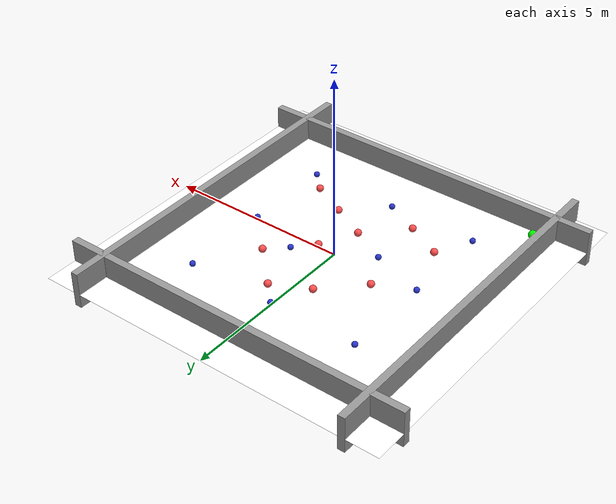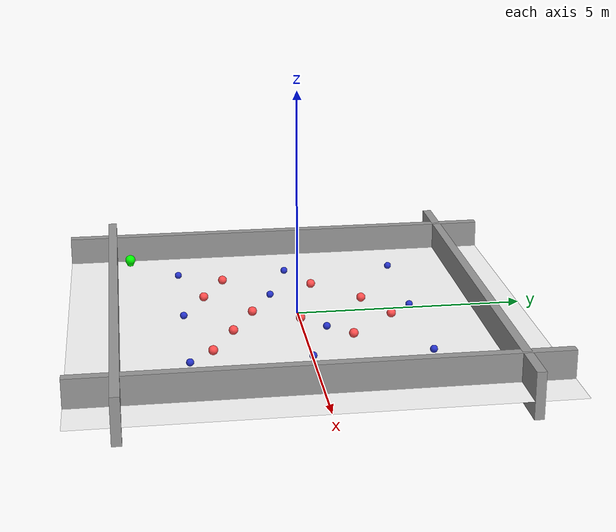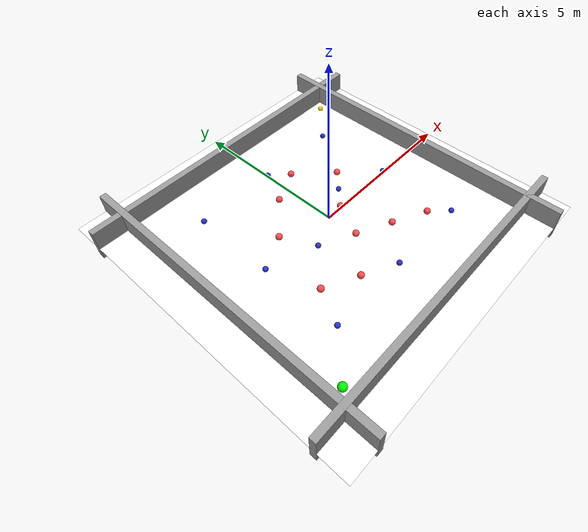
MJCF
<mujoco>
  <option gravity="0 0 -50" integrator="RK4" timestep="0.01"/>
  <visual><map znear="0.01"/></visual>

  <asset>
    <texture name="grid" type="2d" builtin="checker" width="512" height="512"
             rgb1="0.8 0.8 0.8" rgb2="1 1 1"/>
    <material name="grid_mat" texture="grid" texrepeat="10 10" reflectance="0.2"/>
  </asset>

  <default>
    <geom friction="1 0.01 0.001" solref="0.02 1" solimp="0.9 0.95 0.001"/>
    <site type="sphere" size="0.08"/>
    <default class="dynamic">
      <geom type="sphere" size="0.1" rgba="1 0.3 0.3 1"/>
    </default>
    <default class="static">
      <geom type="sphere" size="0.08" rgba="0.15 0.2 0.8 1"/>
    </default>
  </default>

  <worldbody>
    <camera name="top" pos="0 0 10" xyaxes="1 0 0 0 1 0"/>

    <!-- Floor + walls -->
    <geom name="floor" type="plane" size="5 5 0.1" material="grid_mat" rgba="1 1 1 1"/>
    <geom name="wall_left"  type="box" pos="-4 0 0.1" size="0.1 5 0.5" rgba="0.6 0.6 0.6 1"/>
    <geom name="wall_right" type="box" pos="4 0 0.1"  size="0.1 5 0.5" rgba="0.6 0.6 0.6 1"/>
    <geom name="wall_top"   type="box" pos="0 4 0.1"  size="5 0.1 0.5" rgba="0.6 0.6 0.6 1"/>
    <geom name="wall_bot"   type="box" pos="0 -4 0.1" size="5 0.1 0.5" rgba="0.6 0.6 0.6 1"/>

    <!-- Start/Goal markers -->
    <site name="start" pos="-3.6 -3.6 0.02" rgba="0 1 0 1"/>
    <site name="goal"  pos=" 3.6  3.6 0.02" rgba="1 0.85 0 1"/>

    <!-- 10 DYNAMIC obstacles (cat1-cat10) - RED with freejoint, positions randomized at runtime -->
    <body name="cat1"  pos="-2.0 -1.5 0.1"><freejoint/><geom class="dynamic"/></body>
    <body name="cat2"  pos="-1.0 -2.0 0.1"><freejoint/><geom class="dynamic"/></body>
    <body name="cat3"  pos="0.0 -1.0 0.1"><freejoint/><geom class="dynamic"/></body>
    <body name="cat4"  pos="1.0 -1.5 0.1"><freejoint/><geom class="dynamic"/></body>
    <body name="cat5"  pos="2.0 -2.0 0.1"><freejoint/><geom class="dynamic"/></body>
    <body name="cat6"  pos="-1.5 0.5 0.1"><freejoint/><geom class="dynamic"/></body>
    <body name="cat7"  pos="0.5 0.0 0.1"><freejoint/><geom class="dynamic"/></body>
    <body name="cat8"  pos="1.5 1.0 0.1"><freejoint/><geom class="dynamic"/></body>
    <body name="cat9"  pos="-0.5 1.5 0.1"><freejoint/><geom class="dynamic"/></body>
    <body name="cat10" pos="0.5 2.0 0.1"><freejoint/><geom class="dynamic"/></body>

    <!-- 10 STATIC obstacles (cat11-cat20) - BLUE with freejoint for runtime randomization -->
    <body name="cat11" pos="-2.5 -2.5 0.08"><freejoint/><geom class="static"/></body>
    <body name="cat12" pos="2.5 -2.5 0.08"><freejoint/><geom class="static"/></body>
    <body name="cat13" pos="-2.5 2.5 0.08"><freejoint/><geom class="static"/></body>
    <body name="cat14" pos="2.5 2.5 0.08"><freejoint/><geom class="static"/></body>
    <body name="cat15" pos="0.0 -2.5 0.08"><freejoint/><geom class="static"/></body>
    <body name="cat16" pos="0.0 2.5 0.08"><freejoint/><geom class="static"/></body>
    <body name="cat17" pos="-2.5 0.0 0.08"><freejoint/><geom class="static"/></body>
    <body name="cat18" pos="2.5 0.0 0.08"><freejoint/><geom class="static"/></body>
    <body name="cat19" pos="-1.0 -0.5 0.08"><freejoint/><geom class="static"/></body>
    <body name="cat20" pos="1.0 0.5 0.08"><freejoint/><geom class="static"/></body>

    <!-- Robot with freejoint -->
    <body name="robot" pos="-3.6 -3.6 0.12">
      <freejoint/>
      <geom name="robot_geom" type="sphere" size="0.12" rgba="0 1 0 1"/>
    </body>
  </worldbody>
</mujoco>
